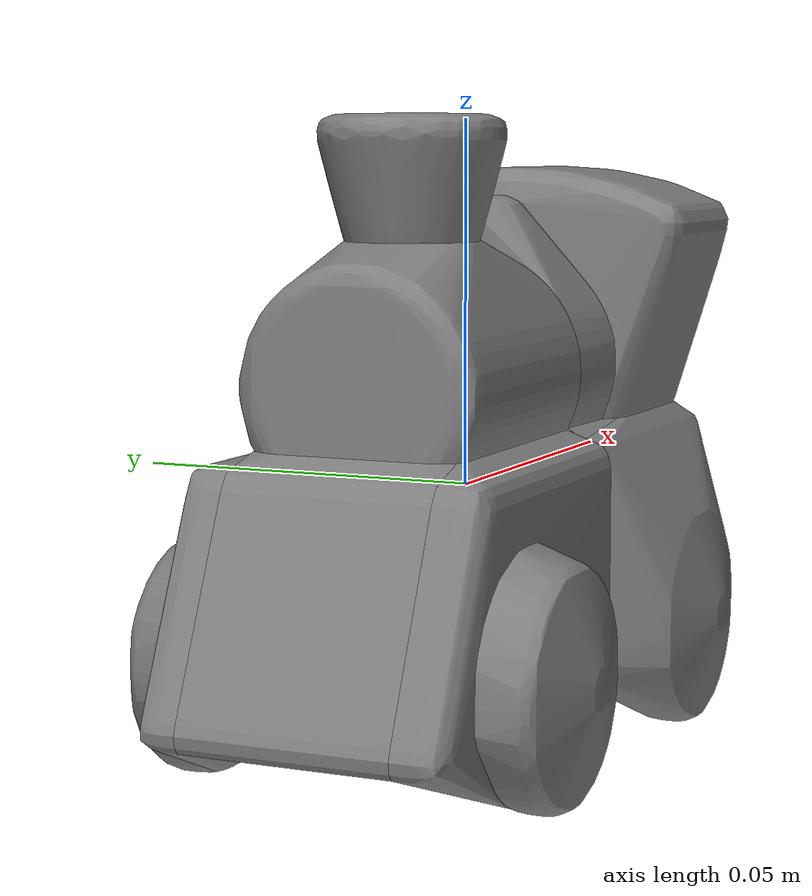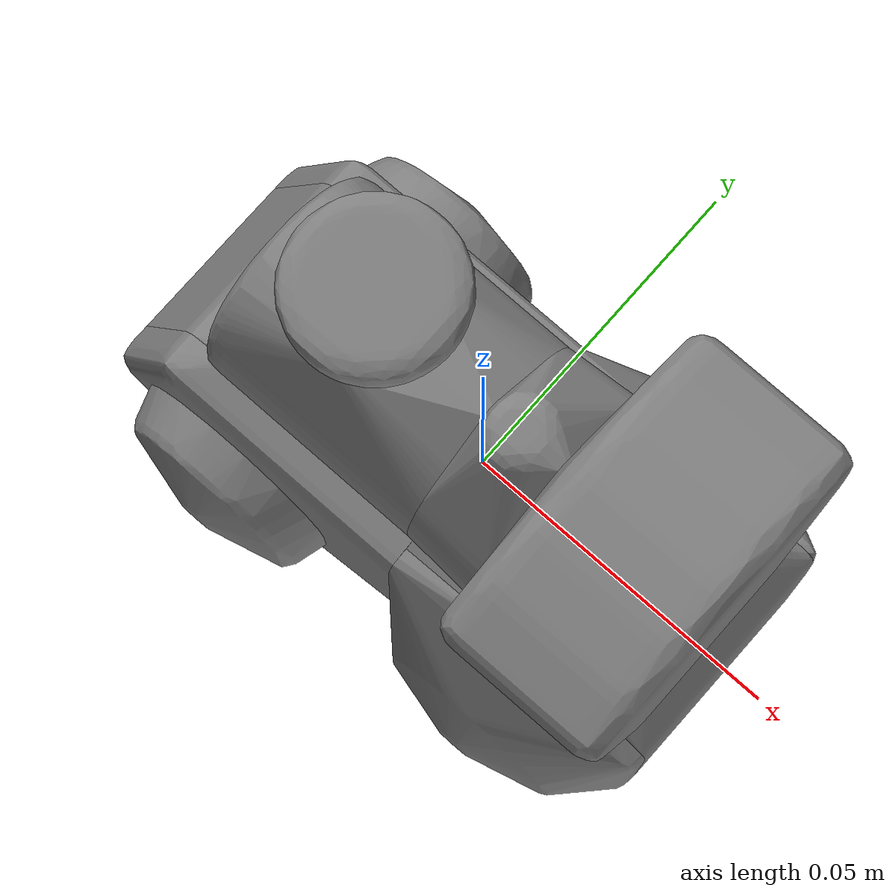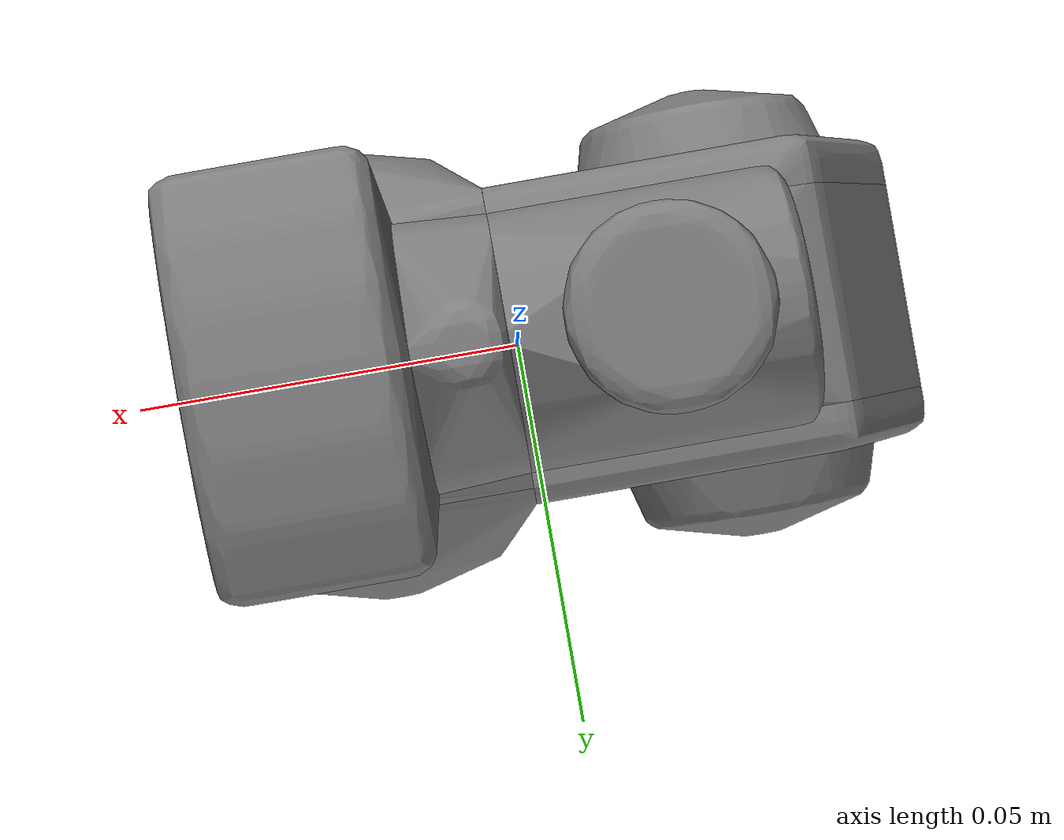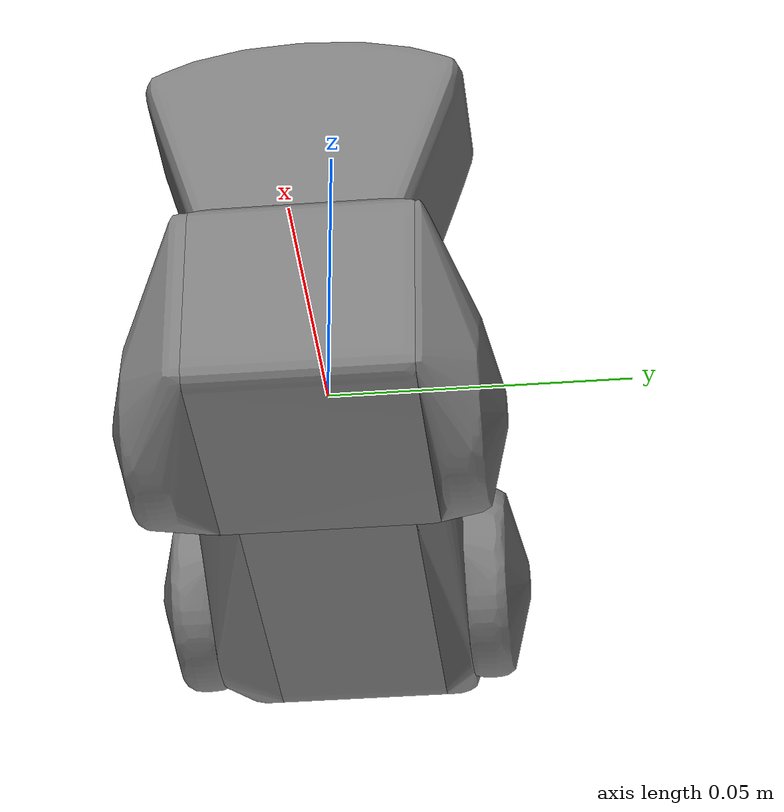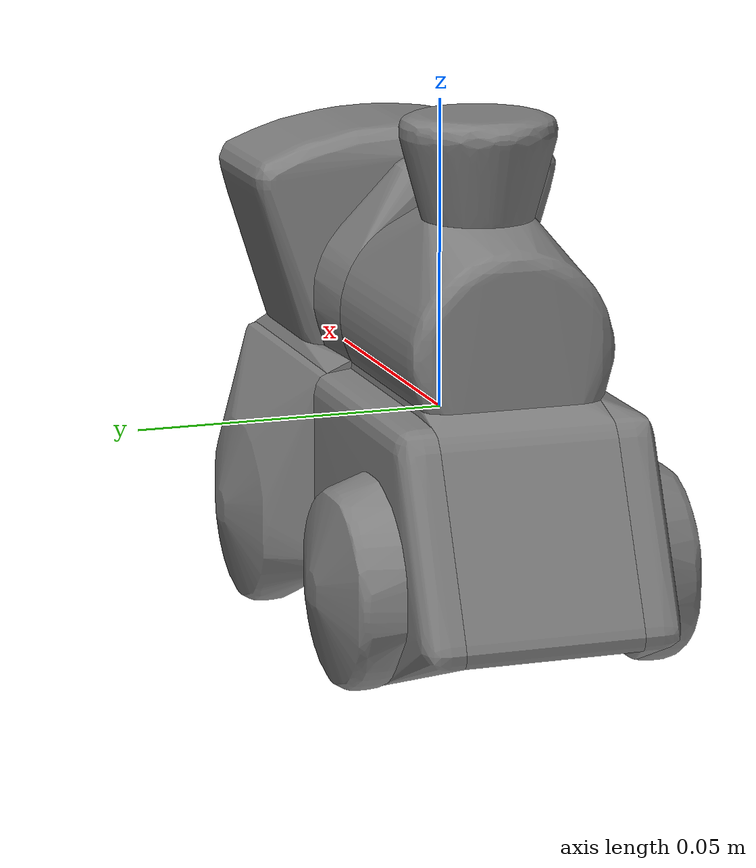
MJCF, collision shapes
<mujoco model="train">
  <compiler meshdir="."/>

  <asset>
    <mesh name="train" file="train.stl"/>
    <mesh name="train_collision_hull_000" file="train_collision_hull_000.stl"/>
    <mesh name="train_collision_hull_001" file="train_collision_hull_001.stl"/>
    <mesh name="train_collision_hull_002" file="train_collision_hull_002.stl"/>
    <mesh name="train_collision_hull_003" file="train_collision_hull_003.stl"/>
    <mesh name="train_collision_hull_004" file="train_collision_hull_004.stl"/>
    <mesh name="train_collision_hull_005" file="train_collision_hull_005.stl"/>
    <mesh name="train_collision_hull_006" file="train_collision_hull_006.stl"/>
    <mesh name="train_collision_hull_007" file="train_collision_hull_007.stl"/>
    <mesh name="train_collision_hull_008" file="train_collision_hull_008.stl"/>
    <mesh name="train_collision_hull_009" file="train_collision_hull_009.stl"/>
    <mesh name="train_collision_hull_010" file="train_collision_hull_010.stl"/>
    <mesh name="train_collision_hull_011" file="train_collision_hull_011.stl"/>
  </asset>

  <worldbody>
    <body name="object">
      <freejoint name="object_joint"/>
      <geom name="object_visual" type="mesh" mesh="train"
            contype="0" conaffinity="0" group="2" rgba="0.9 0.9 0.8 1" mass="0"/>
      <geom name="train_collision_hull_000_collision" type="mesh" mesh="train_collision_hull_000"
            mass="0.0042" condim="6" friction="1.0 0.002 0.002" priority="1"/>
      <geom name="train_collision_hull_001_collision" type="mesh" mesh="train_collision_hull_001"
            mass="0.0042" condim="6" friction="1.0 0.002 0.002" priority="1"/>
      <geom name="train_collision_hull_002_collision" type="mesh" mesh="train_collision_hull_002"
            mass="0.0042" condim="6" friction="1.0 0.002 0.002" priority="1"/>
      <geom name="train_collision_hull_003_collision" type="mesh" mesh="train_collision_hull_003"
            mass="0.0042" condim="6" friction="1.0 0.002 0.002" priority="1"/>
      <geom name="train_collision_hull_004_collision" type="mesh" mesh="train_collision_hull_004"
            mass="0.0042" condim="6" friction="1.0 0.002 0.002" priority="1"/>
      <geom name="train_collision_hull_005_collision" type="mesh" mesh="train_collision_hull_005"
            mass="0.0042" condim="6" friction="1.0 0.002 0.002" priority="1"/>
      <geom name="train_collision_hull_006_collision" type="mesh" mesh="train_collision_hull_006"
            mass="0.0042" condim="6" friction="1.0 0.002 0.002" priority="1"/>
      <geom name="train_collision_hull_007_collision" type="mesh" mesh="train_collision_hull_007"
            mass="0.0042" condim="6" friction="1.0 0.002 0.002" priority="1"/>
      <geom name="train_collision_hull_008_collision" type="mesh" mesh="train_collision_hull_008"
            mass="0.0042" condim="6" friction="1.0 0.002 0.002" priority="1"/>
      <geom name="train_collision_hull_009_collision" type="mesh" mesh="train_collision_hull_009"
            mass="0.0042" condim="6" friction="1.0 0.002 0.002" priority="1"/>
      <geom name="train_collision_hull_010_collision" type="mesh" mesh="train_collision_hull_010"
            mass="0.0042" condim="6" friction="1.0 0.002 0.002" priority="1"/>
      <geom name="train_collision_hull_011_collision" type="mesh" mesh="train_collision_hull_011"
            mass="0.0042" condim="6" friction="1.0 0.002 0.002" priority="1"/>
    </body>
  </worldbody>
</mujoco>
